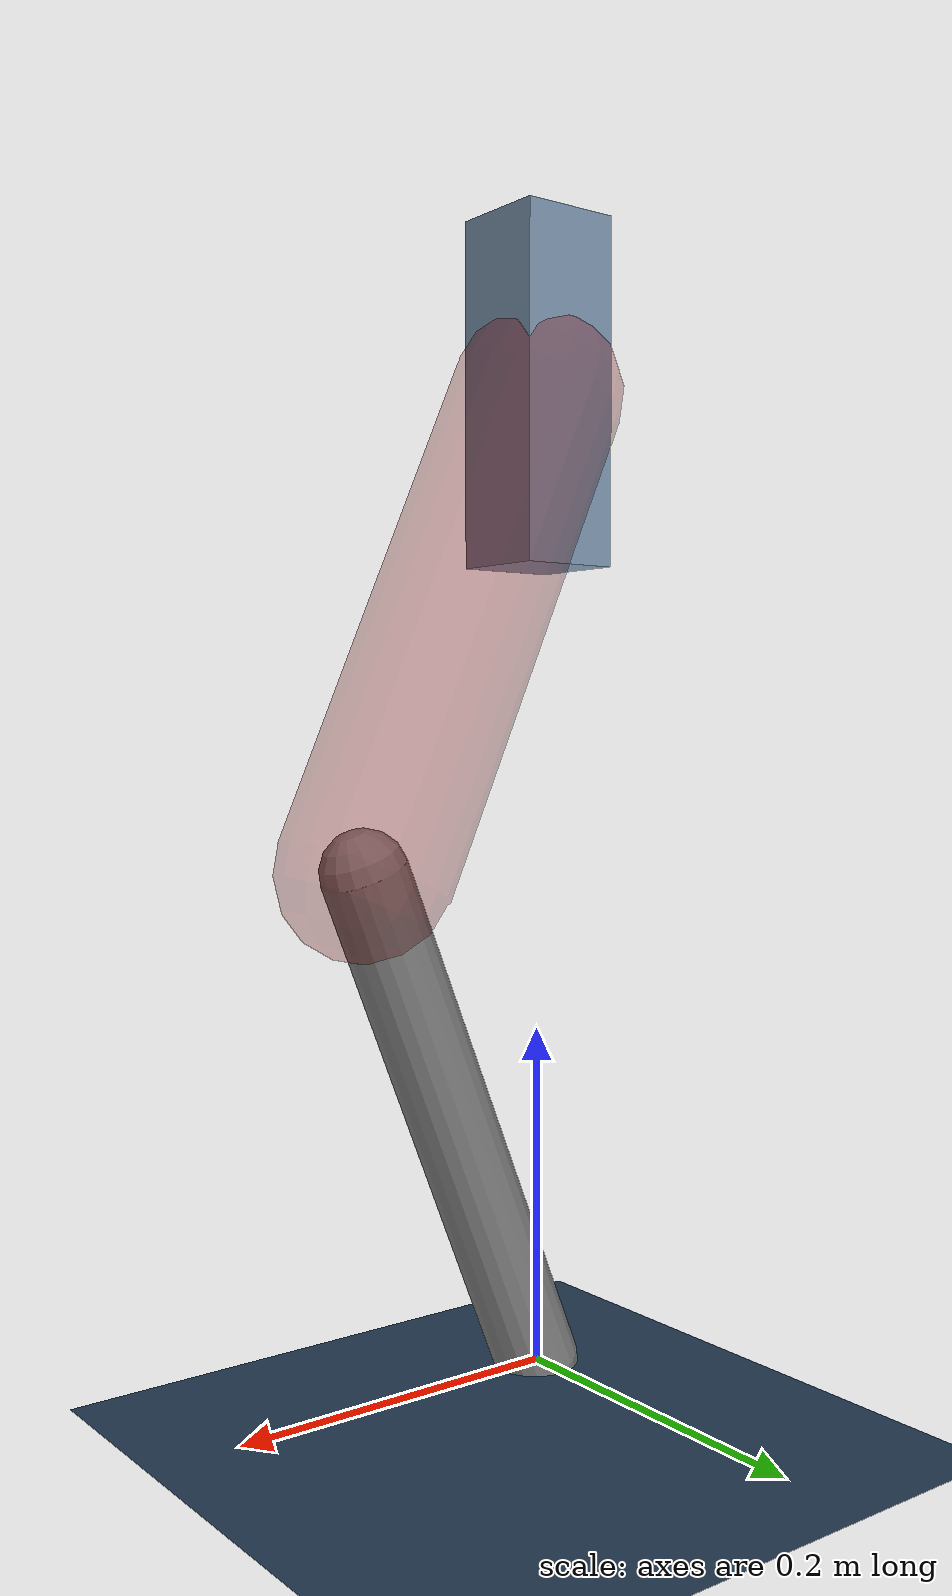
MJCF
<mujoco model="Hopper2D">
	<compiler inertiafromgeom="true" angle="radian" />
	<option timestep="0.001" integrator="implicit" cone="elliptic" solver="Newton" tolerance="1e-10" />

	<default>
		<geom contype="1" conaffinity="1" condim="3" friction="2 0.005 0.0001" solref="0.005 1" />
		<joint limited="true" damping="0.1" />
	</default>

	<asset>
		<texture name="skybox" type="skybox" builtin="gradient" rgb1=".4 .6 .8" rgb2="0 0 0" width="800" height="800" />
		<texture name="grid" type="2d" builtin="checker" rgb1=".1 .2 .3" rgb2=".2 .3 .4" width="300" height="300" mark="edge" markrgb=".2 .3 .4" />
		<material name="ground" texture="grid" texrepeat="1 1" texuniform="true" reflectance="0.1" />
		<material name="leg" rgba="0.5 0.6 0.7 1" />
	</asset>

	<worldbody>

		<geom name="floor" type="plane" size="5 5 0.25" material="ground" />

		<light directional="false" diffuse="0.8 0.8 0.8" specular="0.3 0.3 0.3" pos="0 0 2" dir="0 0 -1" />
		<light mode="targetbodycom" target="base" directional="false" diffuse="0.8 0.8 0.8" specular="0.3 0.3 0.3" pos="0 0 2" dir="0 0 -1" />

		<camera name="fixed" pos="0 -2 1" xyaxes="1 0 0 0 0 1" />
		<camera name="tracking" mode="trackcom" pos="0 -3 1" />

		<body name="root" pos="0 0 0.5715501110995868">
			<joint name="slide_x" type="slide" axis="1 0 0" range="-100 100" />
			<joint name="slide_z" type="slide" axis="0 0 1" range="0 10" />

			<body name="base" pos="0 0 0">
				<geom name="torso" type="box" size="0.03 0.03 0.1" mass="1.787" material="leg" />

				<body name="link1" pos="0 0 0" euler="0 1.1524118669240768 0">
					<joint type="hinge" axis="0 -1 0" pos="0 0 0" name="hinge1" limited="true" range="-3.14 3.14" stiffness="0" damping="0.1" />
					<geom name="thigh" type="capsule" fromto="0 0 0 0.29840024784306296 0 0" size="0.05" rgba="0.5 0 0 0.3" mass="0.98438066917627" />

					<body name="link2" pos="0.29840024784306296 0 0" euler="0 0.8037278661671273 0">
						<joint type="hinge" axis="0 -1 0" pos="0 0 0" name="hinge2" limited="true" range="-3.14 3.14" stiffness="0" damping="0.1" />
						<geom name="shank" type="capsule" fromto="0 0 0 0.3225399756319001 0 0" size="0.025" mass="0.50173198050552" />

					</body>
				</body>
			</body>
		</body>
	</worldbody>

	<actuator>
		<motor name="torque1" joint="hinge1" ctrlrange="-12.19029126000051 12.19029126000051" ctrllimited="true" gear="1" />
		<motor name="torque2" joint="hinge2" ctrlrange="-39.39710642328621 39.39710642328621" ctrllimited="true" gear="1" />
	</actuator>
</mujoco>
